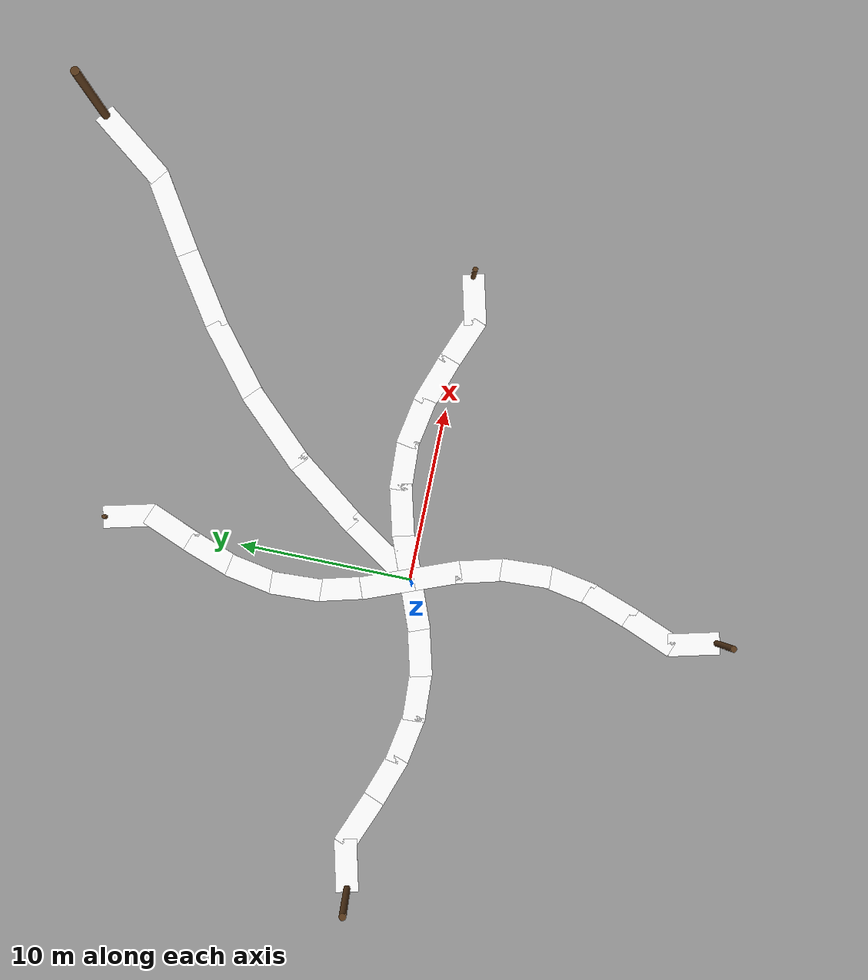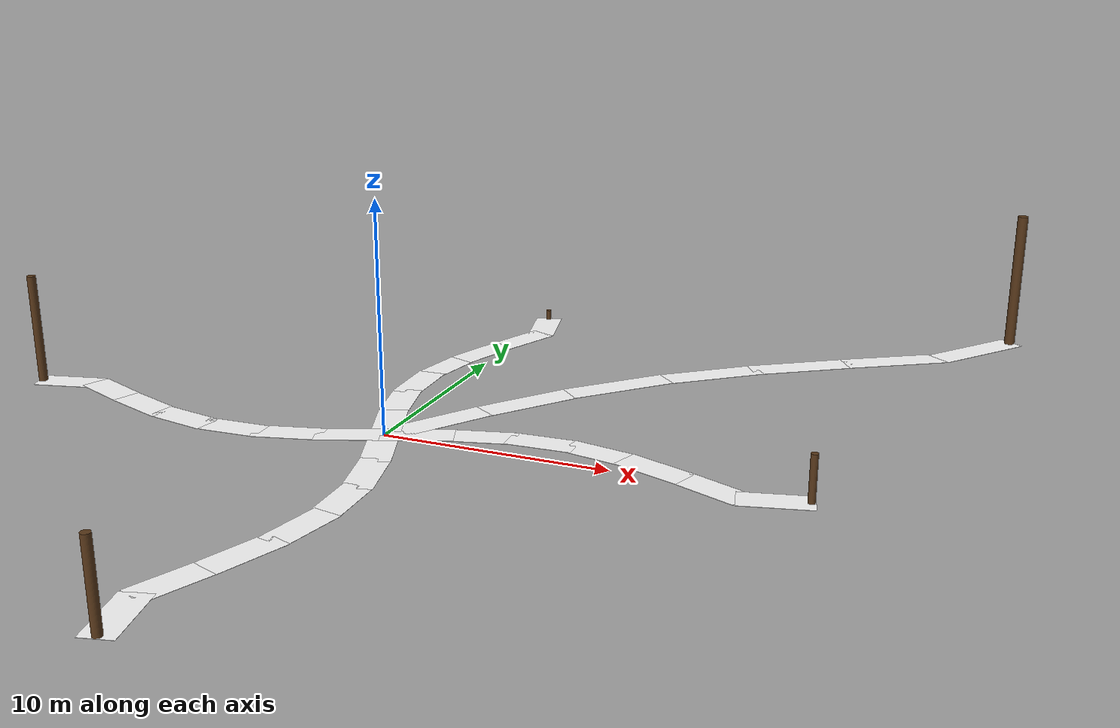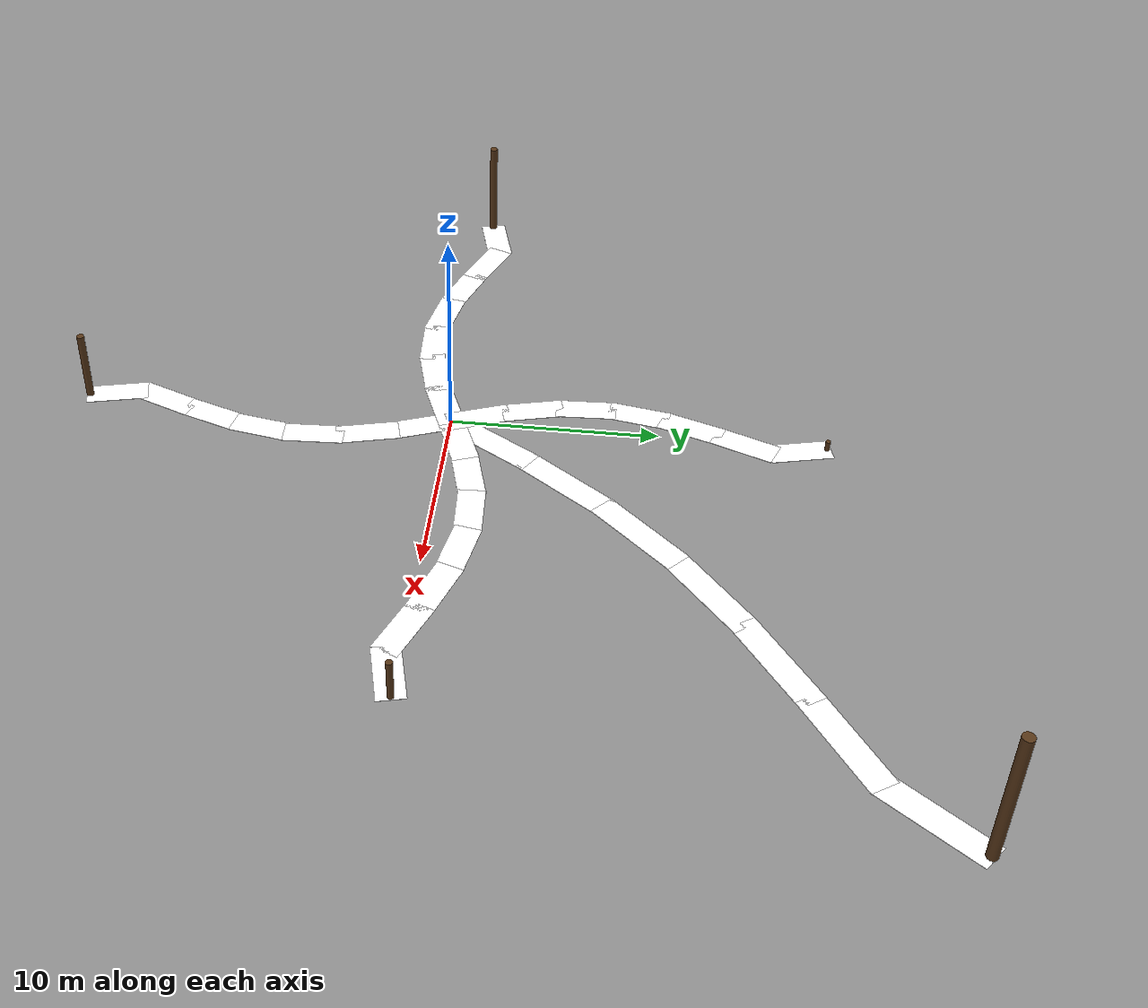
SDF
<sdf version="1.8">
 <world name="default">
  <physics name="4ms" type="ignored">
   <max_step_size>0.004</max_step_size>
   <real_time_factor>1.0</real_time_factor>
  </physics>
  <plugin filename="gz-sim-physics-system" name="gz::sim::systems::Physics"/>
  <plugin filename="gz-sim-user-commands-system" name="gz::sim::systems::UserCommands"/>
  <plugin filename="gz-sim-scene-broadcaster-system" name="gz::sim::systems::SceneBroadcaster"/>
  <plugin filename="gz-sim-sensors-system" name="gz::sim::systems::Sensors">
   <render_engine>ogre2</render_engine>
  </plugin>
  <scene><grid>false</grid></scene>
  <light type="directional" name="sun">
   <pose>0 0 10 0 0 0</pose>
   <diffuse>0.8 0.8 0.8 1</diffuse>
   <specular>0.2 0.2 0.2 1</specular>
   <attenuation>
    <range>1000</range>
    <constant>0.9</constant>
    <linear>0.01</linear>
    <quadratic>0.001</quadratic>
   </attenuation>
   <direction>-0.5 0.1 -0.9</direction>
  </light>
  <model name="beacon1_post">
   <static>true</static>
   <link name="link">
    <collision name="collision">
     <geometry><cylinder><radius>0.12</radius><length>0.5</length></cylinder></geometry>
    </collision>
    <visual name="visual">
     <cast_shadows>false</cast_shadows>
     <geometry><cylinder><radius>0.12</radius><length>0.5</length></cylinder></geometry>
     <material><ambient>0.35 0.22 0.1 1</ambient><diffuse>0.35 0.22 0.1 1</diffuse></material>
    </visual>
   </link>
   <pose>0.0 18.0 0.25 0 0 0</pose>
  </model>
  <model name="beacon2_post">
   <static>true</static>
   <link name="link">
    <collision name="collision">
     <geometry><cylinder><radius>0.15</radius><length>2.0</length></cylinder></geometry>
    </collision>
    <visual name="visual">
     <cast_shadows>false</cast_shadows>
     <geometry><cylinder><radius>0.15</radius><length>2.0</length></cylinder></geometry>
     <material><ambient>0.35 0.22 0.1 1</ambient><diffuse>0.35 0.22 0.1 1</diffuse></material>
    </visual>
   </link>
   <pose>18.0 0.0 1.0 0 0 0</pose>
  </model>
  <model name="beacon3_post">
   <static>true</static>
   <link name="link">
    <collision name="collision">
     <geometry><cylinder><radius>0.18</radius><length>3.5</length></cylinder></geometry>
    </collision>
    <visual name="visual">
     <cast_shadows>false</cast_shadows>
     <geometry><cylinder><radius>0.18</radius><length>3.5</length></cylinder></geometry>
     <material><ambient>0.35 0.22 0.1 1</ambient><diffuse>0.35 0.22 0.1 1</diffuse></material>
    </visual>
   </link>
   <pose>0.0 -18.0 1.75 0 0 0</pose>
  </model>
  <model name="beacon4_post">
   <static>true</static>
   <link name="link">
    <collision name="collision">
     <geometry><cylinder><radius>0.2</radius><length>5.0</length></cylinder></geometry>
    </collision>
    <visual name="visual">
     <cast_shadows>false</cast_shadows>
     <geometry><cylinder><radius>0.2</radius><length>5.0</length></cylinder></geometry>
     <material><ambient>0.35 0.22 0.1 1</ambient><diffuse>0.35 0.22 0.1 1</diffuse></material>
    </visual>
   </link>
   <pose>-18.0 0.0 2.5 0 0 0</pose>
  </model>
  <model name="beacon5_post">
   <static>true</static>
   <link name="link">
    <collision name="collision">
     <geometry><cylinder><radius>0.25</radius><length>6.5</length></cylinder></geometry>
    </collision>
    <visual name="visual">
     <cast_shadows>false</cast_shadows>
     <geometry><cylinder><radius>0.25</radius><length>6.5</length></cylinder></geometry>
     <material><ambient>0.35 0.22 0.1 1</ambient><diffuse>0.35 0.22 0.1 1</diffuse></material>
    </visual>
   </link>
   <pose>23.0 23.0 3.25 0 0 0</pose>
  </model>
  <model name="trail_beacon1_0">
   <static>true</static>
   <link name="link">
    <visual name="visual">
     <cast_shadows>false</cast_shadows>
     <geometry><box><size>3.106 1.3 0.01</size></box></geometry>
     <material>
      <ambient>1.0 1.0 1.0 1.0</ambient>
      <diffuse>1.0 1.0 1.0 1.0</diffuse>
      <pbr><metal><albedo_map>model://dirt_path/materials/textures/dirt.png</albedo_map></metal></pbr>
     </material>
    </visual>
   </link>
   <pose>-0.496 1.286 0.001 0 0 1.9389</pose>
  </model>
  <model name="trail_beacon1_1">
   <static>true</static>
   <link name="link">
    <visual name="visual">
     <cast_shadows>false</cast_shadows>
     <geometry><box><size>3.006 1.3 0.01</size></box></geometry>
     <material>
      <ambient>1.0 1.0 1.0 1.0</ambient>
      <diffuse>1.0 1.0 1.0 1.0</diffuse>
      <pbr><metal><albedo_map>model://dirt_path/materials/textures/dirt.png</albedo_map></metal></pbr>
     </material>
    </visual>
   </link>
   <pose>-1.323 3.857 0.001 0 0 1.8233</pose>
  </model>
  <model name="trail_beacon1_2">
   <static>true</static>
   <link name="link">
    <visual name="visual">
     <cast_shadows>false</cast_shadows>
     <geometry><box><size>2.924 1.3 0.01</size></box></geometry>
     <material>
      <ambient>1.0 1.0 1.0 1.0</ambient>
      <diffuse>1.0 1.0 1.0 1.0</diffuse>
      <pbr><metal><albedo_map>model://dirt_path/materials/textures/dirt.png</albedo_map></metal></pbr>
     </material>
    </visual>
   </link>
   <pose>-1.713 6.429 0.001 0 0 1.6158</pose>
  </model>
  <model name="trail_beacon1_3">
   <static>true</static>
   <link name="link">
    <visual name="visual">
     <cast_shadows>false</cast_shadows>
     <geometry><box><size>2.964 1.3 0.01</size></box></geometry>
     <material>
      <ambient>1.0 1.0 1.0 1.0</ambient>
      <diffuse>1.0 1.0 1.0 1.0</diffuse>
      <pbr><metal><albedo_map>model://dirt_path/materials/textures/dirt.png</albedo_map></metal></pbr>
     </material>
    </visual>
   </link>
   <pose>-1.536 9.000 0.001 0 0 1.3900</pose>
  </model>
  <model name="trail_beacon1_4">
   <static>true</static>
   <link name="link">
    <visual name="visual">
     <cast_shadows>false</cast_shadows>
     <geometry><box><size>3.075 1.3 0.01</size></box></geometry>
     <material>
      <ambient>1.0 1.0 1.0 1.0</ambient>
      <diffuse>1.0 1.0 1.0 1.0</diffuse>
      <pbr><metal><albedo_map>model://dirt_path/materials/textures/dirt.png</albedo_map></metal></pbr>
     </material>
    </visual>
   </link>
   <pose>-0.851 11.571 0.001 0 0 1.2340</pose>
  </model>
  <model name="trail_beacon1_5">
   <static>true</static>
   <link name="link">
    <visual name="visual">
     <cast_shadows>false</cast_shadows>
     <geometry><box><size>3.121 1.3 0.01</size></box></geometry>
     <material>
      <ambient>1.0 1.0 1.0 1.0</ambient>
      <diffuse>1.0 1.0 1.0 1.0</diffuse>
      <pbr><metal><albedo_map>model://dirt_path/materials/textures/dirt.png</albedo_map></metal></pbr>
     </material>
    </visual>
   </link>
   <pose>0.116 14.143 0.001 0 0 1.1888</pose>
  </model>
  <model name="trail_beacon1_6">
   <static>true</static>
   <link name="link">
    <visual name="visual">
     <cast_shadows>false</cast_shadows>
     <geometry><box><size>2.998 1.3 0.01</size></box></geometry>
     <material>
      <ambient>1.0 1.0 1.0 1.0</ambient>
      <diffuse>1.0 1.0 1.0 1.0</diffuse>
      <pbr><metal><albedo_map>model://dirt_path/materials/textures/dirt.png</albedo_map></metal></pbr>
     </material>
    </visual>
   </link>
   <pose>0.316 16.714 0.001 0 0 1.8120</pose>
  </model>
  <model name="trail_beacon2_0">
   <static>true</static>
   <link name="link">
    <visual name="visual">
     <cast_shadows>false</cast_shadows>
     <geometry><box><size>3.106 1.3 0.01</size></box></geometry>
     <material>
      <ambient>1.0 1.0 1.0 1.0</ambient>
      <diffuse>1.0 1.0 1.0 1.0</diffuse>
      <pbr><metal><albedo_map>model://dirt_path/materials/textures/dirt.png</albedo_map></metal></pbr>
     </material>
    </visual>
   </link>
   <pose>1.286 0.496 0.001 0 0 0.3681</pose>
  </model>
  <model name="trail_beacon2_1">
   <static>true</static>
   <link name="link">
    <visual name="visual">
     <cast_shadows>false</cast_shadows>
     <geometry><box><size>3.006 1.3 0.01</size></box></geometry>
     <material>
      <ambient>1.0 1.0 1.0 1.0</ambient>
      <diffuse>1.0 1.0 1.0 1.0</diffuse>
      <pbr><metal><albedo_map>model://dirt_path/materials/textures/dirt.png</albedo_map></metal></pbr>
     </material>
    </visual>
   </link>
   <pose>3.857 1.323 0.001 0 0 0.2525</pose>
  </model>
  <model name="trail_beacon2_2">
   <static>true</static>
   <link name="link">
    <visual name="visual">
     <cast_shadows>false</cast_shadows>
     <geometry><box><size>2.924 1.3 0.01</size></box></geometry>
     <material>
      <ambient>1.0 1.0 1.0 1.0</ambient>
      <diffuse>1.0 1.0 1.0 1.0</diffuse>
      <pbr><metal><albedo_map>model://dirt_path/materials/textures/dirt.png</albedo_map></metal></pbr>
     </material>
    </visual>
   </link>
   <pose>6.429 1.713 0.001 0 0 0.0451</pose>
  </model>
  <model name="trail_beacon2_3">
   <static>true</static>
   <link name="link">
    <visual name="visual">
     <cast_shadows>false</cast_shadows>
     <geometry><box><size>2.964 1.3 0.01</size></box></geometry>
     <material>
      <ambient>1.0 1.0 1.0 1.0</ambient>
      <diffuse>1.0 1.0 1.0 1.0</diffuse>
      <pbr><metal><albedo_map>model://dirt_path/materials/textures/dirt.png</albedo_map></metal></pbr>
     </material>
    </visual>
   </link>
   <pose>9.000 1.536 0.001 0 0 -0.1808</pose>
  </model>
  <model name="trail_beacon2_4">
   <static>true</static>
   <link name="link">
    <visual name="visual">
     <cast_shadows>false</cast_shadows>
     <geometry><box><size>3.075 1.3 0.01</size></box></geometry>
     <material>
      <ambient>1.0 1.0 1.0 1.0</ambient>
      <diffuse>1.0 1.0 1.0 1.0</diffuse>
      <pbr><metal><albedo_map>model://dirt_path/materials/textures/dirt.png</albedo_map></metal></pbr>
     </material>
    </visual>
   </link>
   <pose>11.571 0.851 0.001 0 0 -0.3368</pose>
  </model>
  <model name="trail_beacon2_5">
   <static>true</static>
   <link name="link">
    <visual name="visual">
     <cast_shadows>false</cast_shadows>
     <geometry><box><size>3.121 1.3 0.01</size></box></geometry>
     <material>
      <ambient>1.0 1.0 1.0 1.0</ambient>
      <diffuse>1.0 1.0 1.0 1.0</diffuse>
      <pbr><metal><albedo_map>model://dirt_path/materials/textures/dirt.png</albedo_map></metal></pbr>
     </material>
    </visual>
   </link>
   <pose>14.143 -0.116 0.001 0 0 -0.3820</pose>
  </model>
  <model name="trail_beacon2_6">
   <static>true</static>
   <link name="link">
    <visual name="visual">
     <cast_shadows>false</cast_shadows>
     <geometry><box><size>2.998 1.3 0.01</size></box></geometry>
     <material>
      <ambient>1.0 1.0 1.0 1.0</ambient>
      <diffuse>1.0 1.0 1.0 1.0</diffuse>
      <pbr><metal><albedo_map>model://dirt_path/materials/textures/dirt.png</albedo_map></metal></pbr>
     </material>
    </visual>
   </link>
   <pose>16.714 -0.316 0.001 0 0 0.2412</pose>
  </model>
  <model name="trail_beacon3_0">
   <static>true</static>
   <link name="link">
    <visual name="visual">
     <cast_shadows>false</cast_shadows>
     <geometry><box><size>3.106 1.3 0.01</size></box></geometry>
     <material>
      <ambient>1.0 1.0 1.0 1.0</ambient>
      <diffuse>1.0 1.0 1.0 1.0</diffuse>
      <pbr><metal><albedo_map>model://dirt_path/materials/textures/dirt.png</albedo_map></metal></pbr>
     </material>
    </visual>
   </link>
   <pose>0.496 -1.286 0.001 0 0 -1.2027</pose>
  </model>
  <model name="trail_beacon3_1">
   <static>true</static>
   <link name="link">
    <visual name="visual">
     <cast_shadows>false</cast_shadows>
     <geometry><box><size>3.006 1.3 0.01</size></box></geometry>
     <material>
      <ambient>1.0 1.0 1.0 1.0</ambient>
      <diffuse>1.0 1.0 1.0 1.0</diffuse>
      <pbr><metal><albedo_map>model://dirt_path/materials/textures/dirt.png</albedo_map></metal></pbr>
     </material>
    </visual>
   </link>
   <pose>1.323 -3.857 0.001 0 0 -1.3183</pose>
  </model>
  <model name="trail_beacon3_2">
   <static>true</static>
   <link name="link">
    <visual name="visual">
     <cast_shadows>false</cast_shadows>
     <geometry><box><size>2.924 1.3 0.01</size></box></geometry>
     <material>
      <ambient>1.0 1.0 1.0 1.0</ambient>
      <diffuse>1.0 1.0 1.0 1.0</diffuse>
      <pbr><metal><albedo_map>model://dirt_path/materials/textures/dirt.png</albedo_map></metal></pbr>
     </material>
    </visual>
   </link>
   <pose>1.713 -6.429 0.001 0 0 -1.5257</pose>
  </model>
  <model name="trail_beacon3_3">
   <static>true</static>
   <link name="link">
    <visual name="visual">
     <cast_shadows>false</cast_shadows>
     <geometry><box><size>2.964 1.3 0.01</size></box></geometry>
     <material>
      <ambient>1.0 1.0 1.0 1.0</ambient>
      <diffuse>1.0 1.0 1.0 1.0</diffuse>
      <pbr><metal><albedo_map>model://dirt_path/materials/textures/dirt.png</albedo_map></metal></pbr>
     </material>
    </visual>
   </link>
   <pose>1.536 -9.000 0.001 0 0 -1.7516</pose>
  </model>
  <model name="trail_beacon3_4">
   <static>true</static>
   <link name="link">
    <visual name="visual">
     <cast_shadows>false</cast_shadows>
     <geometry><box><size>3.075 1.3 0.01</size></box></geometry>
     <material>
      <ambient>1.0 1.0 1.0 1.0</ambient>
      <diffuse>1.0 1.0 1.0 1.0</diffuse>
      <pbr><metal><albedo_map>model://dirt_path/materials/textures/dirt.png</albedo_map></metal></pbr>
     </material>
    </visual>
   </link>
   <pose>0.851 -11.571 0.001 0 0 -1.9076</pose>
  </model>
  <model name="trail_beacon3_5">
   <static>true</static>
   <link name="link">
    <visual name="visual">
     <cast_shadows>false</cast_shadows>
     <geometry><box><size>3.121 1.3 0.01</size></box></geometry>
     <material>
      <ambient>1.0 1.0 1.0 1.0</ambient>
      <diffuse>1.0 1.0 1.0 1.0</diffuse>
      <pbr><metal><albedo_map>model://dirt_path/materials/textures/dirt.png</albedo_map></metal></pbr>
     </material>
    </visual>
   </link>
   <pose>-0.116 -14.143 0.001 0 0 -1.9528</pose>
  </model>
  <model name="trail_beacon3_6">
   <static>true</static>
   <link name="link">
    <visual name="visual">
     <cast_shadows>false</cast_shadows>
     <geometry><box><size>2.998 1.3 0.01</size></box></geometry>
     <material>
      <ambient>1.0 1.0 1.0 1.0</ambient>
      <diffuse>1.0 1.0 1.0 1.0</diffuse>
      <pbr><metal><albedo_map>model://dirt_path/materials/textures/dirt.png</albedo_map></metal></pbr>
     </material>
    </visual>
   </link>
   <pose>-0.316 -16.714 0.001 0 0 -1.3296</pose>
  </model>
  <model name="trail_beacon4_0">
   <static>true</static>
   <link name="link">
    <visual name="visual">
     <cast_shadows>false</cast_shadows>
     <geometry><box><size>3.106 1.3 0.01</size></box></geometry>
     <material>
      <ambient>1.0 1.0 1.0 1.0</ambient>
      <diffuse>1.0 1.0 1.0 1.0</diffuse>
      <pbr><metal><albedo_map>model://dirt_path/materials/textures/dirt.png</albedo_map></metal></pbr>
     </material>
    </visual>
   </link>
   <pose>-1.286 -0.496 0.001 0 0 -2.7735</pose>
  </model>
  <model name="trail_beacon4_1">
   <static>true</static>
   <link name="link">
    <visual name="visual">
     <cast_shadows>false</cast_shadows>
     <geometry><box><size>3.006 1.3 0.01</size></box></geometry>
     <material>
      <ambient>1.0 1.0 1.0 1.0</ambient>
      <diffuse>1.0 1.0 1.0 1.0</diffuse>
      <pbr><metal><albedo_map>model://dirt_path/materials/textures/dirt.png</albedo_map></metal></pbr>
     </material>
    </visual>
   </link>
   <pose>-3.857 -1.323 0.001 0 0 -2.8891</pose>
  </model>
  <model name="trail_beacon4_2">
   <static>true</static>
   <link name="link">
    <visual name="visual">
     <cast_shadows>false</cast_shadows>
     <geometry><box><size>2.924 1.3 0.01</size></box></geometry>
     <material>
      <ambient>1.0 1.0 1.0 1.0</ambient>
      <diffuse>1.0 1.0 1.0 1.0</diffuse>
      <pbr><metal><albedo_map>model://dirt_path/materials/textures/dirt.png</albedo_map></metal></pbr>
     </material>
    </visual>
   </link>
   <pose>-6.429 -1.713 0.001 0 0 -3.0965</pose>
  </model>
  <model name="trail_beacon4_3">
   <static>true</static>
   <link name="link">
    <visual name="visual">
     <cast_shadows>false</cast_shadows>
     <geometry><box><size>2.964 1.3 0.01</size></box></geometry>
     <material>
      <ambient>1.0 1.0 1.0 1.0</ambient>
      <diffuse>1.0 1.0 1.0 1.0</diffuse>
      <pbr><metal><albedo_map>model://dirt_path/materials/textures/dirt.png</albedo_map></metal></pbr>
     </material>
    </visual>
   </link>
   <pose>-9.000 -1.536 0.001 0 0 2.9608</pose>
  </model>
  <model name="trail_beacon4_4">
   <static>true</static>
   <link name="link">
    <visual name="visual">
     <cast_shadows>false</cast_shadows>
     <geometry><box><size>3.075 1.3 0.01</size></box></geometry>
     <material>
      <ambient>1.0 1.0 1.0 1.0</ambient>
      <diffuse>1.0 1.0 1.0 1.0</diffuse>
      <pbr><metal><albedo_map>model://dirt_path/materials/textures/dirt.png</albedo_map></metal></pbr>
     </material>
    </visual>
   </link>
   <pose>-11.571 -0.851 0.001 0 0 2.8047</pose>
  </model>
  <model name="trail_beacon4_5">
   <static>true</static>
   <link name="link">
    <visual name="visual">
     <cast_shadows>false</cast_shadows>
     <geometry><box><size>3.121 1.3 0.01</size></box></geometry>
     <material>
      <ambient>1.0 1.0 1.0 1.0</ambient>
      <diffuse>1.0 1.0 1.0 1.0</diffuse>
      <pbr><metal><albedo_map>model://dirt_path/materials/textures/dirt.png</albedo_map></metal></pbr>
     </material>
    </visual>
   </link>
   <pose>-14.143 0.116 0.001 0 0 2.7596</pose>
  </model>
  <model name="trail_beacon4_6">
   <static>true</static>
   <link name="link">
    <visual name="visual">
     <cast_shadows>false</cast_shadows>
     <geometry><box><size>2.998 1.3 0.01</size></box></geometry>
     <material>
      <ambient>1.0 1.0 1.0 1.0</ambient>
      <diffuse>1.0 1.0 1.0 1.0</diffuse>
      <pbr><metal><albedo_map>model://dirt_path/materials/textures/dirt.png</albedo_map></metal></pbr>
     </material>
    </visual>
   </link>
   <pose>-16.714 0.316 0.001 0 0 -2.9004</pose>
  </model>
  <model name="trail_beacon5_0">
   <static>true</static>
   <link name="link">
    <visual name="visual">
     <cast_shadows>false</cast_shadows>
     <geometry><box><size>5.101 1.3 0.01</size></box></geometry>
     <material>
      <ambient>1.0 1.0 1.0 1.0</ambient>
      <diffuse>1.0 1.0 1.0 1.0</diffuse>
      <pbr><metal><albedo_map>model://dirt_path/materials/textures/dirt.png</albedo_map></metal></pbr>
     </material>
    </visual>
   </link>
   <pose>1.292 1.993 0.001 0 0 0.9956</pose>
  </model>
  <model name="trail_beacon5_1">
   <static>true</static>
   <link name="link">
    <visual name="visual">
     <cast_shadows>false</cast_shadows>
     <geometry><box><size>5.044 1.3 0.01</size></box></geometry>
     <material>
      <ambient>1.0 1.0 1.0 1.0</ambient>
      <diffuse>1.0 1.0 1.0 1.0</diffuse>
      <pbr><metal><albedo_map>model://dirt_path/materials/textures/dirt.png</albedo_map></metal></pbr>
     </material>
    </visual>
   </link>
   <pose>3.993 5.864 0.001 0 0 0.9272</pose>
  </model>
  <model name="trail_beacon5_2">
   <static>true</static>
   <link name="link">
    <visual name="visual">
     <cast_shadows>false</cast_shadows>
     <geometry><box><size>4.998 1.3 0.01</size></box></geometry>
     <material>
      <ambient>1.0 1.0 1.0 1.0</ambient>
      <diffuse>1.0 1.0 1.0 1.0</diffuse>
      <pbr><metal><albedo_map>model://dirt_path/materials/textures/dirt.png</albedo_map></metal></pbr>
     </material>
    </visual>
   </link>
   <pose>7.003 9.426 0.001 0 0 0.8103</pose>
  </model>
  <model name="trail_beacon5_3">
   <static>true</static>
   <link name="link">
    <visual name="visual">
     <cast_shadows>false</cast_shadows>
     <geometry><box><size>5.020 1.3 0.01</size></box></geometry>
     <material>
      <ambient>1.0 1.0 1.0 1.0</ambient>
      <diffuse>1.0 1.0 1.0 1.0</diffuse>
      <pbr><metal><albedo_map>model://dirt_path/materials/textures/dirt.png</albedo_map></metal></pbr>
     </material>
    </visual>
   </link>
   <pose>10.414 12.586 0.001 0 0 0.6846</pose>
  </model>
  <model name="trail_beacon5_4">
   <static>true</static>
   <link name="link">
    <visual name="visual">
     <cast_shadows>false</cast_shadows>
     <geometry><box><size>5.083 1.3 0.01</size></box></geometry>
     <material>
      <ambient>1.0 1.0 1.0 1.0</ambient>
      <diffuse>1.0 1.0 1.0 1.0</diffuse>
      <pbr><metal><albedo_map>model://dirt_path/materials/textures/dirt.png</albedo_map></metal></pbr>
     </material>
    </visual>
   </link>
   <pose>14.184 15.387 0.001 0 0 0.5940</pose>
  </model>
  <model name="trail_beacon5_5">
   <static>true</static>
   <link name="link">
    <visual name="visual">
     <cast_shadows>false</cast_shadows>
     <geometry><box><size>5.110 1.3 0.01</size></box></geometry>
     <material>
      <ambient>1.0 1.0 1.0 1.0</ambient>
      <diffuse>1.0 1.0 1.0 1.0</diffuse>
      <pbr><metal><albedo_map>model://dirt_path/materials/textures/dirt.png</albedo_map></metal></pbr>
     </material>
    </visual>
   </link>
   <pose>18.153 17.989 0.001 0 0 0.5666</pose>
  </model>
  <model name="trail_beacon5_6">
   <static>true</static>
   <link name="link">
    <visual name="visual">
     <cast_shadows>false</cast_shadows>
     <geometry><box><size>5.040 1.3 0.01</size></box></geometry>
     <material>
      <ambient>1.0 1.0 1.0 1.0</ambient>
      <diffuse>1.0 1.0 1.0 1.0</diffuse>
      <pbr><metal><albedo_map>model://dirt_path/materials/textures/dirt.png</albedo_map></metal></pbr>
     </material>
    </visual>
   </link>
   <pose>21.581 21.134 0.001 0 0 0.9207</pose>
  </model>
 </world>
</sdf>
